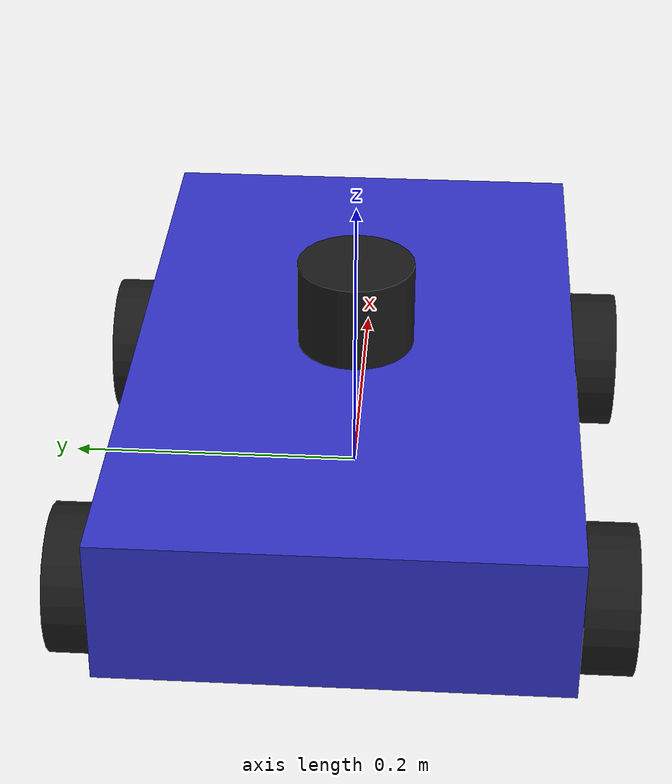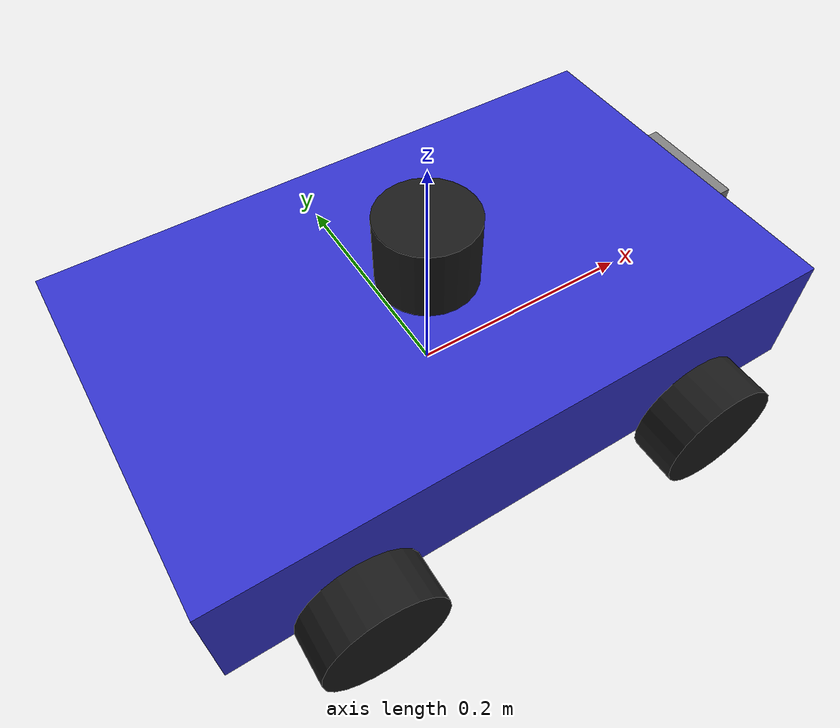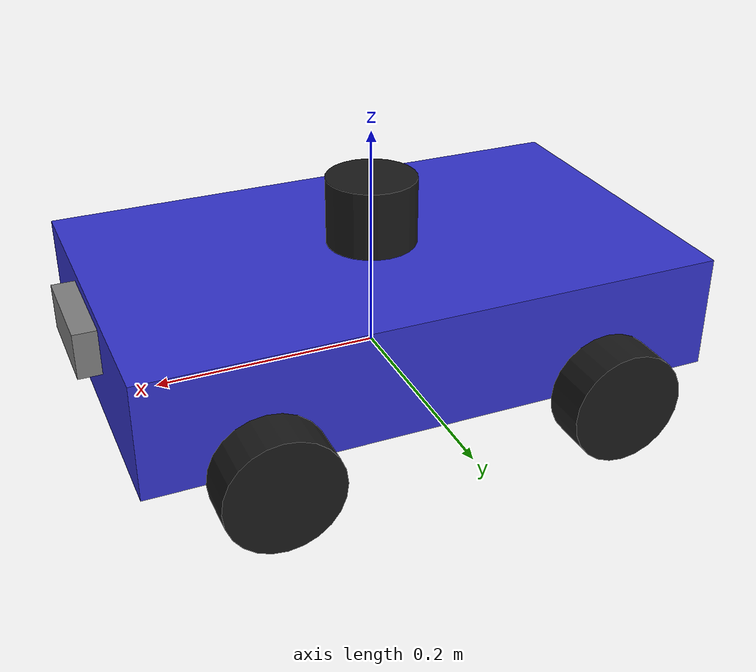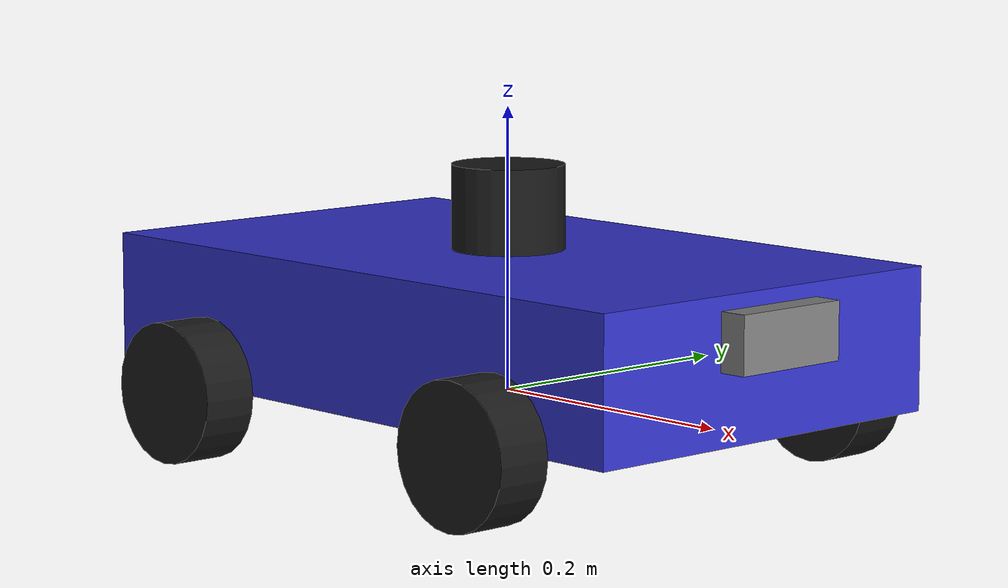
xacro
<?xml version="1.0"?>
<robot name="my_robot" xmlns:xacro="http://www.ros.org/wiki/xacro">

  <!-- ===================== BASE ===================== -->
  <link name="base_footprint"/>

  <joint name="base_joint" type="fixed">
    <parent link="base_footprint"/>
    <child link="base_link"/>
    <origin xyz="0 0 0.05" rpy="0 0 0"/>
  </joint>

  <link name="base_link">
    <visual>
      <geometry><box size="0.5 0.3 0.1"/></geometry>
      <material name="blue"><color rgba="0.2 0.2 0.8 1"/></material>
    </visual>
    <collision>
      <geometry><box size="0.5 0.3 0.1"/></geometry>
    </collision>
    <inertial>
      <mass value="5.0"/>
      <inertia ixx="0.05" iyy="0.1" izz="0.1" ixy="0" ixz="0" iyz="0"/>
    </inertial>
  </link>

  <!-- ===================== 바퀴 4개 ===================== -->
  <xacro:macro name="wheel" params="name x y">
    <link name="${name}_wheel">
      <visual>
        <geometry><cylinder radius="0.05" length="0.04"/></geometry>
        <material name="black"><color rgba="0.1 0.1 0.1 1"/></material>
      </visual>
      <collision>
        <geometry><cylinder radius="0.05" length="0.04"/></geometry>
      </collision>
      <inertial>
        <mass value="0.5"/>
        <inertia ixx="0.001" iyy="0.001" izz="0.001" ixy="0" ixz="0" iyz="0"/>
      </inertial>
    </link>
    <joint name="${name}_wheel_joint" type="continuous">
      <parent link="base_link"/>
      <child link="${name}_wheel"/>
      <origin xyz="${x} ${y} -0.05" rpy="1.5707 0 0"/>
      <axis xyz="0 0 -1"/>
    </joint>
    <gazebo reference="${name}_wheel">
      <mu1>1.0</mu1>
      <mu2>1.0</mu2>
    </gazebo>
  </xacro:macro>

  <xacro:wheel name="front_left"  x=" 0.15" y=" 0.17"/>
  <xacro:wheel name="front_right" x=" 0.15" y="-0.17"/>
  <xacro:wheel name="rear_left"   x="-0.15" y=" 0.17"/>
  <xacro:wheel name="rear_right"  x="-0.15" y="-0.17"/>

  <!-- ===================== LiDAR ===================== -->
  <link name="lidar_link">
    <visual>
      <geometry><cylinder radius="0.04" length="0.06"/></geometry>
      <material name="black"><color rgba="0.1 0.1 0.1 1"/></material>
    </visual>
    <collision>
      <geometry><cylinder radius="0.04" length="0.06"/></geometry>
    </collision>
    <inertial>
      <mass value="0.1"/>
      <inertia ixx="0.0001" iyy="0.0001" izz="0.0001" ixy="0" ixz="0" iyz="0"/>
    </inertial>
  </link>

  <joint name="lidar_joint" type="fixed">
    <parent link="base_link"/>
    <child link="lidar_link"/>
    <origin xyz="0.0 0.0 0.08" rpy="0 0 0"/>
  </joint>

  <!-- ===================== Depth Camera ===================== -->
  <link name="camera_link">
    <visual>
      <geometry><box size="0.04 0.09 0.04"/></geometry>
      <material name="grey"><color rgba="0.5 0.5 0.5 1"/></material>
    </visual>
    <collision>
      <geometry><box size="0.04 0.09 0.04"/></geometry>
    </collision>
    <inertial>
      <mass value="0.1"/>
      <inertia ixx="0.0001" iyy="0.0001" izz="0.0001" ixy="0" ixz="0" iyz="0"/>
    </inertial>
  </link>

  <joint name="camera_joint" type="fixed">
    <parent link="base_link"/>
    <child link="camera_link"/>
    <origin xyz="0.25 0.0 0.02" rpy="0 0 0"/>
  </joint>

  <!-- 카메라 광학 프레임 (Z-forward 변환) -->
  <link name="camera_optical_frame"/>
  <joint name="camera_optical_joint" type="fixed">
    <parent link="camera_link"/>
    <child link="camera_optical_frame"/>
    <origin xyz="0 0 0" rpy="-1.5707963 0 -1.5707963"/>
  </joint>

  <!-- ===================== Gazebo 플러그인 ===================== -->

  <!-- 바닥 마찰 -->
  <gazebo reference="base_link">
    <mu1>0.2</mu1>
    <mu2>0.2</mu2>
  </gazebo>

  <!-- Differential Drive -->
  <gazebo>
    <plugin name="differential_drive_controller" filename="libgazebo_ros_diff_drive.so">
      <ros>
        <remapping>cmd_vel:=/cmd_vel</remapping>
        <remapping>odom:=/odom</remapping>
      </ros>
      <left_joint>front_left_wheel_joint</left_joint>
      <right_joint>front_right_wheel_joint</right_joint>
      <wheel_separation>0.34</wheel_separation>
      <wheel_diameter>0.1</wheel_diameter>
      <max_wheel_torque>20</max_wheel_torque>
      <max_wheel_acceleration>1.0</max_wheel_acceleration>
      <publish_odom>true</publish_odom>
      <publish_odom_tf>true</publish_odom_tf>
      <publish_wheel_tf>false</publish_wheel_tf>
      <odometry_frame>odom</odometry_frame>
      <robot_base_frame>base_footprint</robot_base_frame>
    </plugin>
  </gazebo>

  <!-- LiDAR (3D Ray Sensor - VLP-16 스타일, 16채널) -->
  <gazebo reference="lidar_link">
    <sensor type="ray" name="lidar_sensor">
      <pose>0 0 0 0 0 0</pose>
      <visualize>false</visualize>
      <update_rate>10</update_rate>
      <ray>
        <scan>
          <!-- 수평: 360도, 360 샘플 (1도 해상도) -->
          <horizontal>
            <samples>360</samples>
            <resolution>1</resolution>
            <min_angle>-3.14159265</min_angle>
            <max_angle>3.14159265</max_angle>
          </horizontal>
          <!-- 수직: 16채널, -15도 ~ +15도 (VLP-16 모사) -->
          <vertical>
            <samples>16</samples>
            <resolution>1</resolution>
            <min_angle>-0.261799</min_angle>
            <max_angle>0.261799</max_angle>
          </vertical>
        </scan>
        <range>
          <min>0.12</min>
          <max>20.0</max>
          <resolution>0.01</resolution>
        </range>
        <noise>
          <type>gaussian</type>
          <mean>0.0</mean>
          <stddev>0.01</stddev>
        </noise>
      </ray>
      <!-- PointCloud2로 출력 -->
      <plugin name="gazebo_ros_lidar" filename="libgazebo_ros_ray_sensor.so">
        <ros>
          <remapping>~/out:=/lidar/points</remapping>
        </ros>
        <output_type>sensor_msgs/PointCloud2</output_type>
        <frame_name>lidar_link</frame_name>
      </plugin>
    </sensor>
  </gazebo>

  <!-- Depth Camera -->
  <gazebo reference="camera_link">
    <sensor type="depth" name="depth_camera_sensor">
      <update_rate>30.0</update_rate>
      <camera>
        <horizontal_fov>1.047198</horizontal_fov>
        <image>
          <width>640</width>
          <height>480</height>
          <format>R8G8B8</format>
        </image>
        <clip>
          <near>0.1</near>
          <far>8.0</far>
        </clip>
        <noise>
          <type>gaussian</type>
          <mean>0.0</mean>
          <stddev>0.007</stddev>
        </noise>
      </camera>
      <plugin name="gazebo_ros_depth_camera" filename="libgazebo_ros_depth_camera.so">
        <ros>
          <remapping>~/image_raw:=/camera/color/image_raw</remapping>
          <remapping>~/depth/image_raw:=/camera/depth/image_raw</remapping>
          <remapping>~/points:=/camera/depth/points</remapping>
          <remapping>~/camera_info:=/camera/color/camera_info</remapping>
          <remapping>~/depth/camera_info:=/camera/depth/camera_info</remapping>
        </ros>
        <camera_name>depth_camera</camera_name>
        <frame_name>camera_optical_frame</frame_name>
        <hack_baseline>0.07</hack_baseline>
        <min_depth>0.1</min_depth>
        <max_depth>8.0</max_depth>
      </plugin>
    </sensor>
  </gazebo>

</robot>
